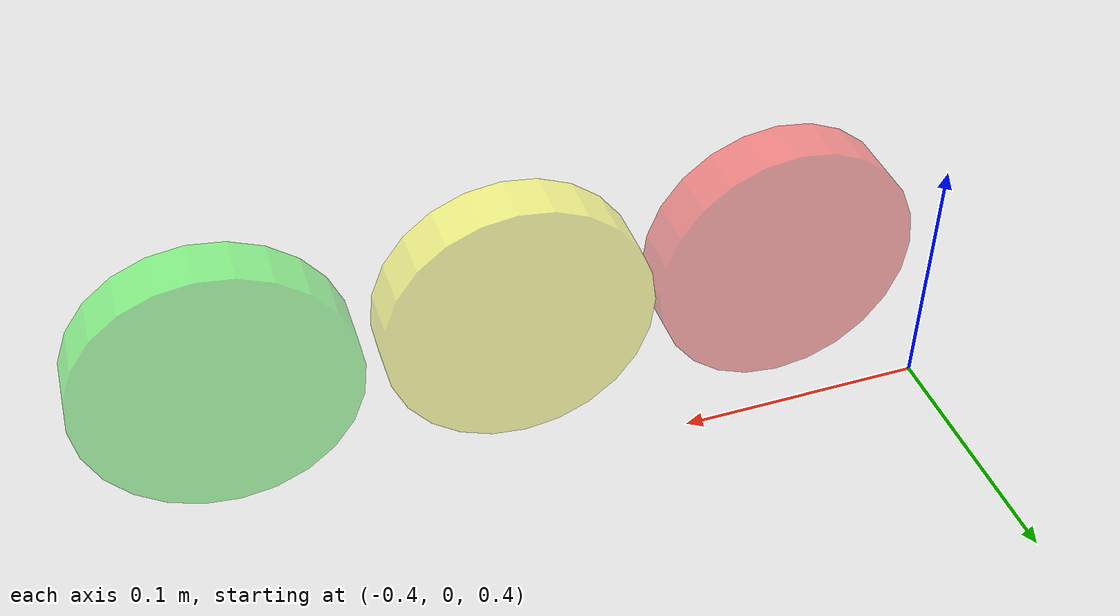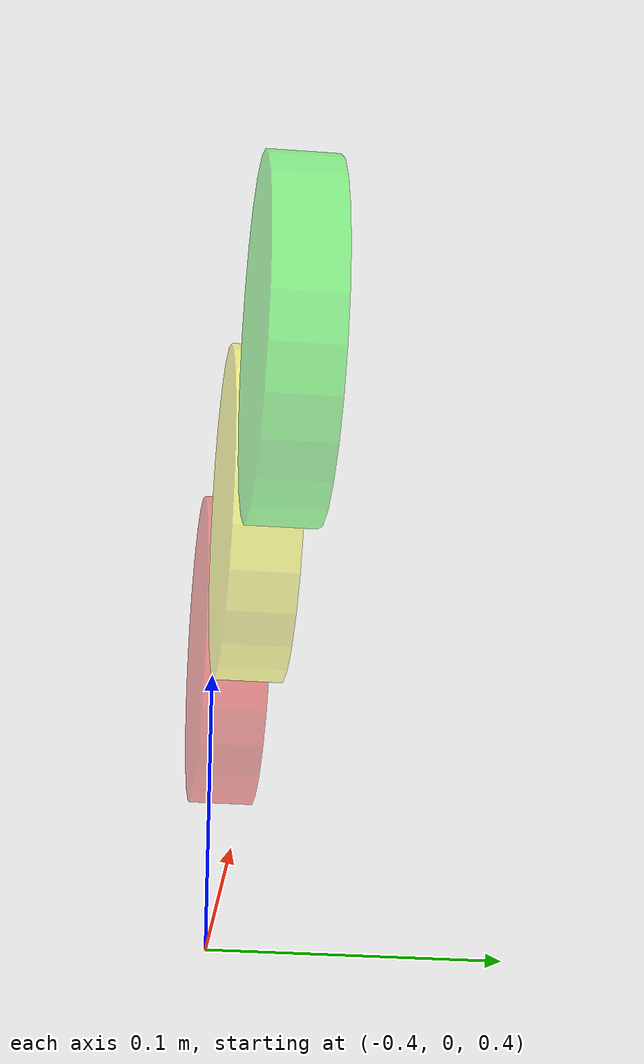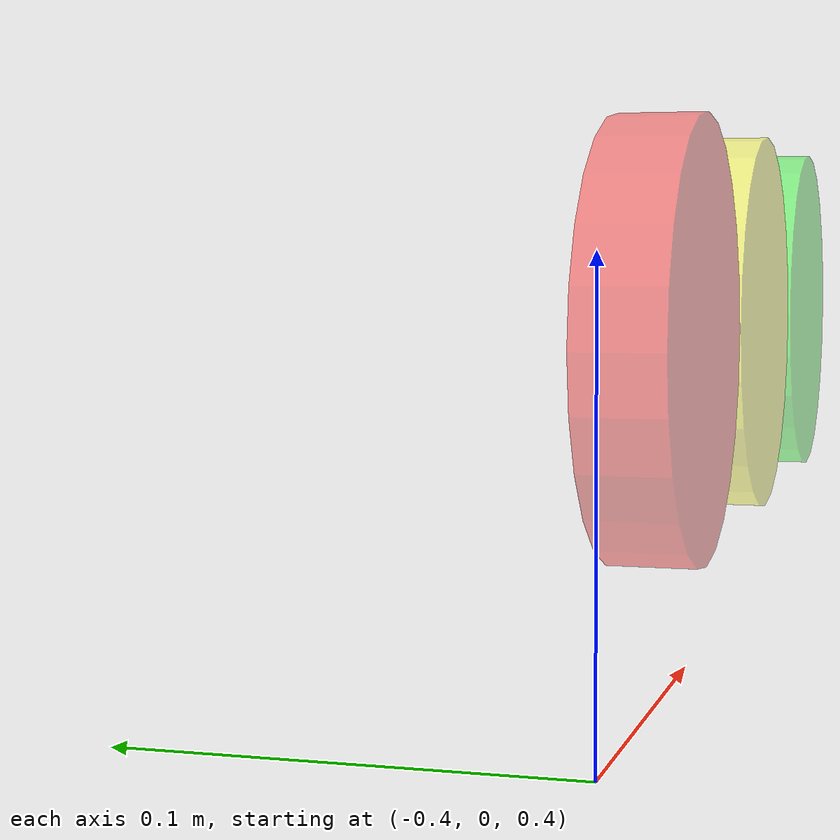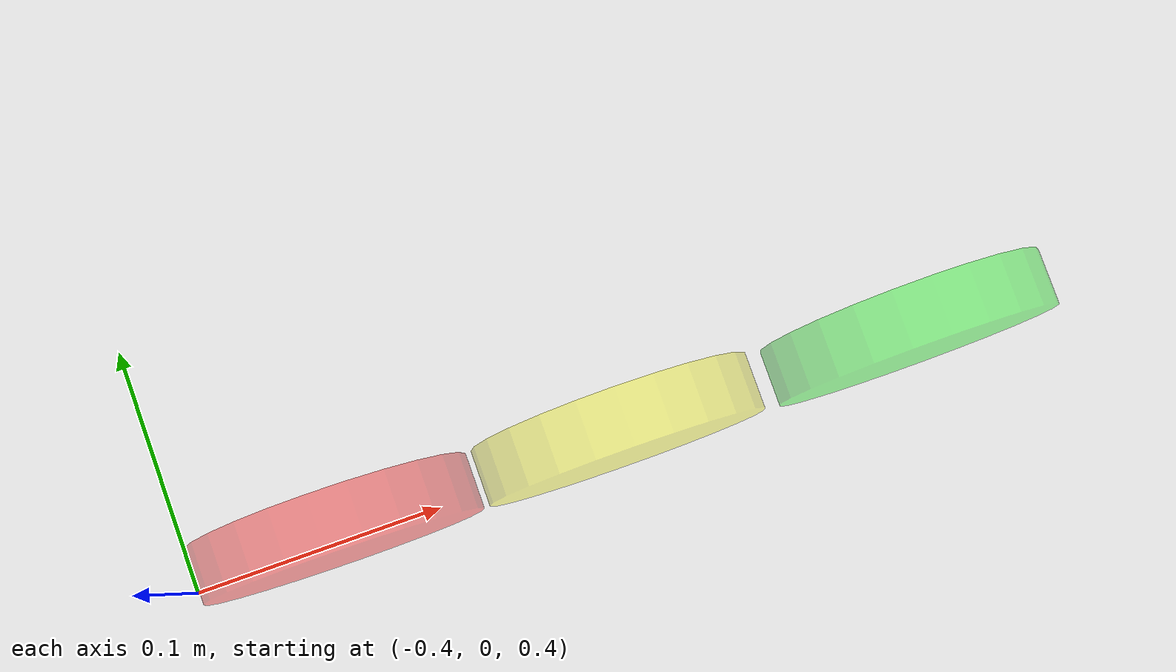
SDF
<?xml version="1.0" ?>
<sdf version="1.5">

  <model name="all_lights">
    <static>true</static>

    <link name='Yellow_light_source'>
      <pose>-0.23 0 0.48 1.57 0 0</pose>

      <light name='yellow' type='spot'>
        <pose>0 0 0.0 1.57 0 0</pose>
        <attenuation>
          <range>30</range>
          <linear>0.05</linear>
        </attenuation>
        <diffuse>0.5 1 1 1</diffuse>
        <specular>1 1 1 1</specular>
        <spot>
          <inner_angle>0.3</inner_angle>
          <outer_angle>0.35</outer_angle>
          <falloff>1</falloff>
        </spot>
        <direction>0 0 -1</direction>
      </light>

      <visual name='yellow'>
        <geometry>
          <cylinder>
            <radius>0.05</radius>
            <length>0.02</length>
          </cylinder>
          <sphere>
            <radius>0.08</radius>
          </sphere>
        </geometry>
        <transparency>0.6</transparency>

        <material>
          <ambient>1 1 0 1</ambient>
          <diffuse>1 1 0 1</diffuse>
          <specular>1 1 1 1</specular>
          <emissive>1 1 0 1 </emissive>
        </material>

      </visual>
    </link>

    <link name='Red_light_source'>
      <pose>-0.332 0 0.48 1.57 0 0</pose>

      <light name='red' type='spot'>
        <pose>0 0 0.0 1.57 0 0</pose>
        <attenuation>
          <range>30</range>
          <linear>0.05</linear>
        </attenuation>
        <diffuse>0.5 1 1 1</diffuse>
        <specular>1 1 1 1</specular>
        <spot>
          <inner_angle>0.3</inner_angle>
          <outer_angle>0.35</outer_angle>
          <falloff>1</falloff>
        </spot>
        <direction>0 0 -1</direction>
      </light>

      <visual name='red'>
        <geometry>
          <cylinder>
            <radius>0.05</radius>
            <length>0.02</length>
          </cylinder>
          <sphere>
            <radius>0.08</radius>
          </sphere>
        </geometry>
        <transparency>0.6</transparency>

        <material>
          <ambient> 1 0 0 1</ambient>
          <diffuse> 1 0 0 1</diffuse>
          <specular>1 1 1 1</specular>
          <emissive>1 0 0 1</emissive>
        </material>

      </visual>
    </link>

    <link name='Green_light_source'>

      <pose>-0.124 0 0.48 1.57 0 0</pose>

      <light name='green' type='spot'>
        <pose>0 0 0.0 1.57 0 0</pose>
        <attenuation>
          <range>30</range>
          <linear>0.05</linear>
        </attenuation>
        <diffuse>0.5 1 1 1</diffuse>
        <specular>1 1 1 1</specular>
        <spot>
          <inner_angle>0.3</inner_angle>
          <outer_angle>0.35</outer_angle>
          <falloff>1</falloff>
        </spot>
        <direction>0 0 -1</direction>
      </light>

      <visual name='green'>
        <geometry>
          <cylinder>
            <radius>0.05</radius>
            <length>0.02</length>
          </cylinder>
          <sphere>
            <radius>0.08</radius>
          </sphere>
        </geometry>
        <transparency>0.6</transparency>
        <material>
          <ambient>0 1 0 1</ambient>
          <diffuse>0 1 0 1</diffuse>
          <specular>1 1 1 1</specular>
          <emissive>0 1 0 1</emissive>
        </material>
      </visual>
    </link>

    <plugin name='lights_controller' filename='libLedPlugin.so'>
      <enable>true</enable>

      <light>
        <id>Yellow_light_source/yellow</id>
        <block>
          <duration>0</duration>
          <interval>3</interval>
        </block>
        <block>
          <duration>1</duration>
          <interval>0</interval>
        </block>
        <enable>true</enable>
      </light>

      <light>
        <id>Red_light_source/red</id>
        <block>
          <duration>4</duration>
          <interval>4</interval>
        </block>
        <enable>true</enable>
      </light>

      <light>
        <id>Green_light_source/green</id>
        <block>
          <duration>0</duration>
          <interval>4</interval>
        </block>
        <block>
          <duration>3</duration>
          <interval>1</interval>
        </block>
        <enable>true</enable>
      </light>

    </plugin>
  </model>
</sdf>
